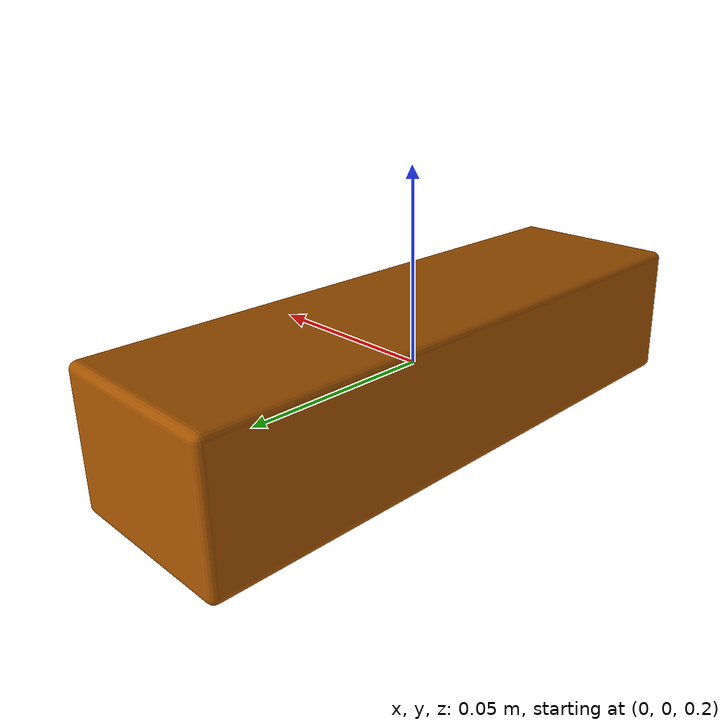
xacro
<?xml version="1.0"?>
<robot xmlns:xacro="http://www.ros.org/wiki/xacro" name="bumblebee2">

  <link name="world"/>

  <xacro:include filename="$(find pointgrey_camera_description)/urdf/pointgrey_bumblebee2.urdf.xacro" />

  <BB2-08S2C-38 frame="bumblebee2" name="bumblebee2" />

  <joint name="world_camera_joint" type="fixed">
    <origin xyz="0 0 0.200" rpy="0 0 0" />
    <parent link="world" />
    <child link="bumblebee2" />
  </joint>

</robot>

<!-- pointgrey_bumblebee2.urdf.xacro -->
<robot xmlns:xacro="http://www.ros.org/wiki/xacro" name="pointgrey_bumblebee2">

  <xacro:macro name="stereo_camera"
    params="frame name fps baseline hfov width height format near far">

    <gazebo reference="${frame}">
      <sensor type="multicamera" name="stereo_camera">
        <update_rate>${fps}</update_rate>
        <camera name="left">
          <pose>0 0 0 0 -1.5707 1.5707</pose>
          <horizontal_fov>${hfov}</horizontal_fov>
          <image>
            <width>${width}</width>
            <height>${height}</height>
            <format>${format}</format>
          </image>
          <clip>
            <near>${near}</near>
            <far>${far}</far>
          </clip>
          <noise>
            <type>gaussian</type>
            <mean>0.0</mean>
            <stddev>0.007</stddev>
          </noise>
        </camera>
        <camera name="right">
          <pose>${baseline} 0 0 0 -1.5707 1.5707</pose>
          <horizontal_fov>${hfov}</horizontal_fov>
          <image>
            <width>${width}</width>
            <height>${height}</height>
            <format>${format}</format>
          </image>
          <clip>
            <near>${near}</near>
            <far>${far}</far>
          </clip>
          <noise>
            <type>gaussian</type>
            <mean>0.0</mean>
            <stddev>0.007</stddev>
          </noise>
        </camera>
        <plugin name="stereo_camera_controller" filename="libgazebo_ros_multicamera.so">
          <alwaysOn>true</alwaysOn>
          <cameraName>${name}</cameraName>
          <imageTopicName>image_raw</imageTopicName>
          <cameraInfoTopicName>camera_info</cameraInfoTopicName>
          <frameName>${frame}</frameName>
          <hackBaseline>${baseline}</hackBaseline>
          <!-- NOTE: Distortion is currently unused -->
          <distortionK1>0.0</distortionK1>
          <distortionK2>0.0</distortionK2>
          <distortionK3>0.0</distortionK3>
          <distortionT1>0.0</distortionT1>
          <distortionT2>0.0</distortionT2>
        </plugin>
      </sensor>
    </gazebo>
  </xacro:macro>

  <xacro:macro name="pointgrey_bumblebee2"
    params="frame:=bumblebee name:=bumblebee hfov format:=R8G8B8 near:=0.5 far:=300 high_res:=false">

    <link name="${frame}">
      <visual>
        <origin xyz="0 0 0" rpy="-1.5707 0 -1.5707"/>
        <geometry>
          <mesh filename="package://pointgrey_camera_description/meshes/pointgrey_bumblebee2.dae"/>
        </geometry>
      </visual>
      <collision>
        <origin xyz="0 0 0" rpy="0 0 0"/>
        <geometry>
          <box size="0.04740 0.157 0.036"/>
        </geometry>
      </collision>
      <inertial>
        <mass value="0.342" />
        <inertia
          ixx="${1/12*0.342*(0.036*0.036 + 0.0474*0.0474)}" ixy="0" ixz="0"
          iyy="${1/12*0.342*(0.157*0.157 + 0.0474*0.0474)}" iyz="0"
          izz="${1/12*0.342*(0.157*0.157 + 0.036*0.036)}" />
      </inertial>
    </link>

    <link name="${frame}_optical">
      <inertial>
        <mass value="1E-5" />
        <inertia
          ixx="1E-10" ixy="0" ixz="0"
          iyy="1E-10" iyz="0"
          izz="1E-10" />
      </inertial>
    </link>

    <joint name="${frame}_optical_joint" type="fixed">
      <origin xyz="0 0 0" rpy="-1.570796 0 -1.570796" />
      <parent link="${frame}" />
      <child link="${frame}_optical" />
    </joint>

    <xacro:if value="${high_res}">
      <xacro:stereo_camera
        frame="${frame}_optical"
        name="${name}"
        hfov="${hfov}"
        baseline="0.120"
        fps="20"
        width="1024"
        height="768"
        format="${format}"
        near="${near}"
        far="${far}"/>
    </xacro:if>

    <xacro:unless value="${high_res}">
      <xacro:stereo_camera
        frame="${frame}_optical"
        name="${name}"
        hfov="${hfov}"
        baseline="0.120"
        fps="48"
        width="640"
        height="480"
        format="${format}"
        near="${near}"
        far="${far}"/>
    </xacro:unless>
  </xacro:macro>

  <xacro:macro name="BB2-03S2C-25" params="frame:=bumblebee name:=bumblebee" >
    <pointgrey_bumblebee2 frame="${frame}" name="${name}" hfov="1.69296937443" />
  </xacro:macro>

  <xacro:macro name="BB2-03S2C-38" params="frame:=bumblebee name:=bumblebee" >
    <pointgrey_bumblebee2 frame="${frame}" name="${name}" hfov="1.15191730632" />
  </xacro:macro>

  <xacro:macro name="BB2-03S2C-60" params="frame:=bumblebee name:=bumblebee" >
    <pointgrey_bumblebee2 frame="${frame}" name="${name}" hfov="0.75049157835" />
  </xacro:macro>

  <xacro:macro name="BB2-08S2C-25" params="frame:=bumblebee name:=bumblebee" >
    <pointgrey_bumblebee2 frame="${frame}" name="${name}" hfov="1.69296937443" high_res="true" />
  </xacro:macro>

  <xacro:macro name="BB2-08S2C-38" params="frame:=bumblebee name:=bumblebee" >
    <pointgrey_bumblebee2 frame="${frame}" name="${name}" hfov="1.15191730632" high_res="true" />
  </xacro:macro>

  <xacro:macro name="BB2-08S2C-60" params="frame:=bumblebee name:=bumblebee" >
    <pointgrey_bumblebee2 frame="${frame}" name="${name}" hfov="0.75049157835" high_res="true" />
  </xacro:macro>
</robot>
